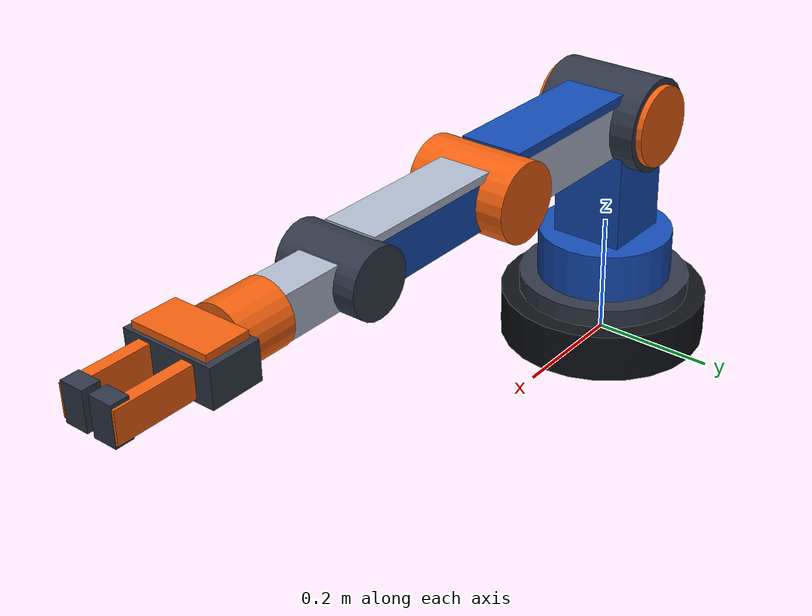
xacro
<?xml version="1.0"?>

<robot
  name="sentinel_arm"
  xmlns:xacro="http://www.ros.org/wiki/xacro">

  <!-- Robot dimensions          -->

  <xacro:property name="base_radius" value="0.17"/>
  <xacro:property name="base_height" value="0.08"/>

  <xacro:property name="turntable_radius" value="0.11"/>
  <xacro:property name="turntable_height" value="0.08"/>

  <xacro:property name="shoulder_height" value="0.28"/>
  <xacro:property name="shoulder_width" value="0.12"/>

  <xacro:property name="upper_arm_length" value="0.34"/>
  <xacro:property name="upper_arm_width" value="0.09"/>

  <xacro:property name="forearm_length" value="0.29"/>
  <xacro:property name="forearm_width" value="0.075"/>

  <xacro:property name="wrist_length" value="0.13"/>
  <xacro:property name="wrist_width" value="0.065"/>

  <xacro:property name="palm_length" value="0.075"/>
  <xacro:property name="palm_width" value="0.14"/>
  <xacro:property name="palm_height" value="0.055"/>

  <xacro:property name="finger_length" value="0.11"/>
  <xacro:property name="finger_width" value="0.018"/>
  <xacro:property name="finger_height" value="0.045"/>

  <!-- Materials                 -->

  <material name="sentinel_black">
    <color rgba="0.06 0.07 0.09 1.0"/>
  </material>

  <material name="sentinel_blue">
    <color rgba="0.08 0.30 0.72 1.0"/>
  </material>

  <material name="sentinel_light">
    <color rgba="0.70 0.74 0.82 1.0"/>
  </material>

  <material name="sentinel_dark">
    <color rgba="0.19 0.22 0.28 1.0"/>
  </material>

  <material name="sentinel_orange">
    <color rgba="0.96 0.38 0.06 1.0"/>
  </material>

  <!-- Base                      -->

  <link name="base_link">
    <visual>
      <origin xyz="0 0 ${base_height / 2.0}" rpy="0 0 0"/>

      <geometry>
        <cylinder
          radius="${base_radius}"
          length="${base_height}"/>
      </geometry>

      <material name="sentinel_black"/>
    </visual>

    <!-- Decorative upper base ring -->
    <visual>
      <origin xyz="0 0 ${base_height + 0.015}" rpy="0 0 0"/>

      <geometry>
        <cylinder radius="0.14" length="0.03"/>
      </geometry>

      <material name="sentinel_dark"/>
    </visual>
  </link>

  <!-- Rotating shoulder base    -->

  <link name="turntable_link">

    <visual>
      <origin xyz="0 0 ${turntable_height / 2.0}" rpy="0 0 0"/>

      <geometry>
        <cylinder
          radius="${turntable_radius}"
          length="${turntable_height}"/>
      </geometry>

      <material name="sentinel_blue"/>
    </visual>

    <!-- Main shoulder column -->
    <visual>
      <origin
        xyz="0 0 ${shoulder_height / 2.0}"
        rpy="0 0 0"/>

      <geometry>
        <box
          size="${shoulder_width}
                ${shoulder_width}
                ${shoulder_height}"/>
      </geometry>

      <material name="sentinel_blue"/>
    </visual>

    <!-- Shoulder joint housing -->
    <visual>
      <origin
        xyz="0 0 ${shoulder_height}"
        rpy="1.5708 0 0"/>

      <geometry>
        <cylinder radius="0.075" length="0.17"/>
      </geometry>

      <material name="sentinel_dark"/>
    </visual>

  </link>

  <joint name="shoulder_pan_joint" type="continuous">
    <parent link="base_link"/>
    <child link="turntable_link"/>

    <origin
      xyz="0 0 ${base_height + 0.03}"
      rpy="0 0 0"/>

    <axis xyz="0 0 1"/>
  </joint>

  <!-- Upper arm                 -->

  <link name="upper_arm_link">

    <!-- Shoulder joint cap -->
    <visual>
      <origin xyz="0 0 0" rpy="1.5708 0 0"/>

      <geometry>
        <cylinder radius="0.065" length="0.19"/>
      </geometry>

      <material name="sentinel_orange"/>
    </visual>

    <!-- Upper arm body -->
    <visual>
      <origin
        xyz="${upper_arm_length / 2.0} 0 0"
        rpy="0 0 0"/>

      <geometry>
        <box
          size="${upper_arm_length}
                ${upper_arm_width}
                ${upper_arm_width}"/>
      </geometry>

      <material name="sentinel_light"/>
    </visual>

    <!-- Decorative top panel -->
    <visual>
      <origin
        xyz="${upper_arm_length / 2.0} 0 0.05"
        rpy="0 0 0"/>

      <geometry>
        <box
          size="${upper_arm_length - 0.05}
                ${upper_arm_width + 0.01}
                0.015"/>
      </geometry>

      <material name="sentinel_blue"/>
    </visual>

  </link>

  <joint name="shoulder_lift_joint" type="revolute">
    <parent link="turntable_link"/>
    <child link="upper_arm_link"/>

    <origin
      xyz="0 0 ${shoulder_height}"
      rpy="0 0 0"/>

    <axis xyz="0 1 0"/>

    <limit
      lower="-1.75"
      upper="1.75"
      effort="30.0"
      velocity="1.2"/>
  </joint>

  <!-- Forearm                   -->

  <link name="forearm_link">

    <!-- Elbow joint housing -->
    <visual>
      <origin xyz="0 0 0" rpy="1.5708 0 0"/>

      <geometry>
        <cylinder radius="0.06" length="0.16"/>
      </geometry>

      <material name="sentinel_orange"/>
    </visual>

    <!-- Forearm body -->
    <visual>
      <origin
        xyz="${forearm_length / 2.0} 0 0"
        rpy="0 0 0"/>

      <geometry>
        <box
          size="${forearm_length}
                ${forearm_width}
                ${forearm_width}"/>
      </geometry>

      <material name="sentinel_blue"/>
    </visual>

    <!-- Forearm panel -->
    <visual>
      <origin
        xyz="${forearm_length / 2.0} 0 0.043"
        rpy="0 0 0"/>

      <geometry>
        <box
          size="${forearm_length - 0.04}
                ${forearm_width + 0.008}
                0.012"/>
      </geometry>

      <material name="sentinel_light"/>
    </visual>

  </link>

  <joint name="elbow_joint" type="revolute">
    <parent link="upper_arm_link"/>
    <child link="forearm_link"/>

    <origin
      xyz="${upper_arm_length} 0 0"
      rpy="0 0 0"/>

    <axis xyz="0 1 0"/>

    <limit
      lower="-2.35"
      upper="2.35"
      effort="22.0"
      velocity="1.4"/>
  </joint>

  <!-- Wrist pitch               -->

  <link name="wrist_pitch_link">

    <visual>
      <origin xyz="0 0 0" rpy="1.5708 0 0"/>

      <geometry>
        <cylinder radius="0.05" length="0.13"/>
      </geometry>

      <material name="sentinel_dark"/>
    </visual>

    <visual>
      <origin
        xyz="${wrist_length / 2.0} 0 0"
        rpy="0 0 0"/>

      <geometry>
        <box
          size="${wrist_length}
                ${wrist_width}
                ${wrist_width}"/>
      </geometry>

      <material name="sentinel_light"/>
    </visual>

  </link>

  <joint name="wrist_pitch_joint" type="revolute">
    <parent link="forearm_link"/>
    <child link="wrist_pitch_link"/>

    <origin
      xyz="${forearm_length} 0 0"
      rpy="0 0 0"/>

    <axis xyz="0 1 0"/>

    <limit
      lower="-1.75"
      upper="1.75"
      effort="12.0"
      velocity="1.8"/>
  </joint>

  <!-- Wrist roll                -->

  <link name="wrist_roll_link">

    <visual>
      <origin xyz="0.04 0 0" rpy="0 1.5708 0"/>

      <geometry>
        <cylinder radius="0.047" length="0.08"/>
      </geometry>

      <material name="sentinel_orange"/>
    </visual>

  </link>

  <joint name="wrist_roll_joint" type="continuous">
    <parent link="wrist_pitch_link"/>
    <child link="wrist_roll_link"/>

    <origin
      xyz="${wrist_length} 0 0"
      rpy="0 0 0"/>

    <axis xyz="1 0 0"/>
  </joint>

  <!-- Gripper palm              -->

  <link name="palm_link">

    <visual>
      <origin
        xyz="${palm_length / 2.0} 0 0"
        rpy="0 0 0"/>

      <geometry>
        <box
          size="${palm_length}
                ${palm_width}
                ${palm_height}"/>
      </geometry>

      <material name="sentinel_dark"/>
    </visual>

    <visual>
      <origin
        xyz="${palm_length / 2.0} 0 0.032"
        rpy="0 0 0"/>

      <geometry>
        <box
          size="${palm_length - 0.01}
                ${palm_width - 0.02}
                0.012"/>
      </geometry>

      <material name="sentinel_orange"/>
    </visual>

  </link>

  <joint name="palm_fixed_joint" type="fixed">
    <parent link="wrist_roll_link"/>
    <child link="palm_link"/>

    <origin xyz="0.08 0 0" rpy="0 0 0"/>
  </joint>

  <!-- Left gripper finger       -->

  <link name="left_finger_link">

    <visual>
      <origin
        xyz="${finger_length / 2.0} 0 0"
        rpy="0 0 0"/>

      <geometry>
        <box
          size="${finger_length}
                ${finger_width}
                ${finger_height}"/>
      </geometry>

      <material name="sentinel_orange"/>
    </visual>

    <!-- Fingertip -->
    <visual>
      <origin
        xyz="${finger_length - 0.012} -0.012 0"
        rpy="0 0 0"/>

      <geometry>
        <box size="0.025 0.035 0.055"/>
      </geometry>

      <material name="sentinel_dark"/>
    </visual>

  </link>

  <joint name="left_finger_joint" type="prismatic">
    <parent link="palm_link"/>
    <child link="left_finger_link"/>

    <origin
      xyz="${palm_length} 0.035 0"
      rpy="0 0 0"/>

    <axis xyz="0 1 0"/>

    <limit
      lower="0.0"
      upper="0.035"
      effort="8.0"
      velocity="0.15"/>
  </joint>

  <!-- Right gripper finger      -->

  <link name="right_finger_link">

    <visual>
      <origin
        xyz="${finger_length / 2.0} 0 0"
        rpy="0 0 0"/>

      <geometry>
        <box
          size="${finger_length}
                ${finger_width}
                ${finger_height}"/>
      </geometry>

      <material name="sentinel_orange"/>
    </visual>

    <!-- Fingertip -->
    <visual>
      <origin
        xyz="${finger_length - 0.012} 0.012 0"
        rpy="0 0 0"/>

      <geometry>
        <box size="0.025 0.035 0.055"/>
      </geometry>

      <material name="sentinel_dark"/>
    </visual>

  </link>

  <joint name="right_finger_joint" type="prismatic">
    <parent link="palm_link"/>
    <child link="right_finger_link"/>

    <origin
      xyz="${palm_length} -0.035 0"
      rpy="0 0 0"/>

    <axis xyz="0 -1 0"/>

    <limit
      lower="0.0"
      upper="0.035"
      effort="8.0"
      velocity="0.15"/>
  </joint>

  <!-- End-effector reference frame -->
  <link name="tool0"/>

  <joint name="tool0_fixed_joint" type="fixed">
    <parent link="palm_link"/>
    <child link="tool0"/>

    <origin
      xyz="${palm_length + finger_length} 0 0"
      rpy="0 0 0"/>
  </joint>

</robot>
